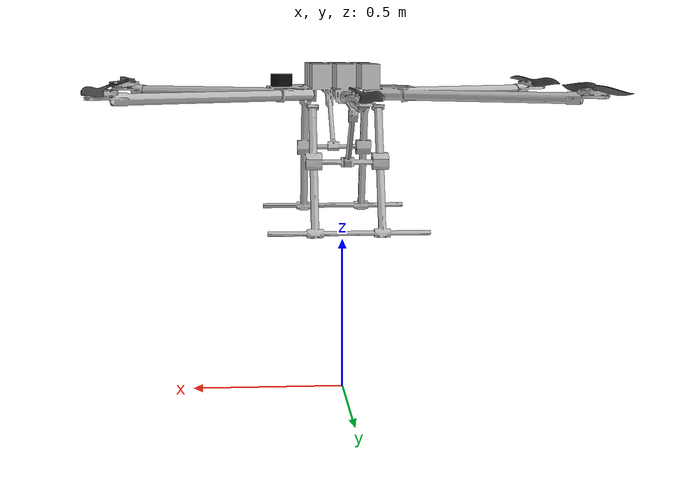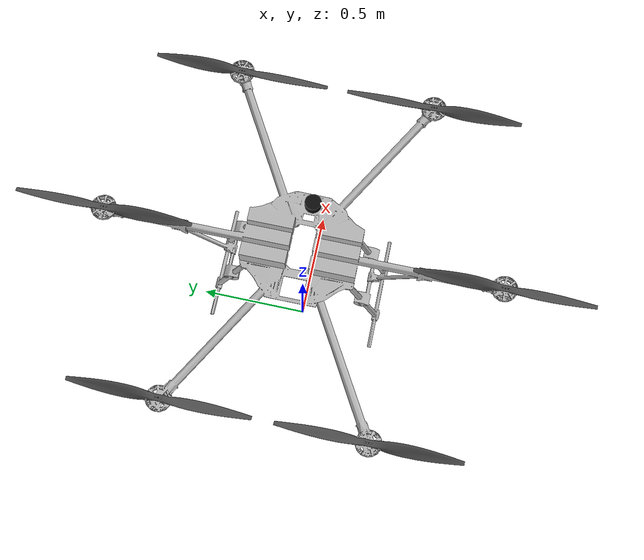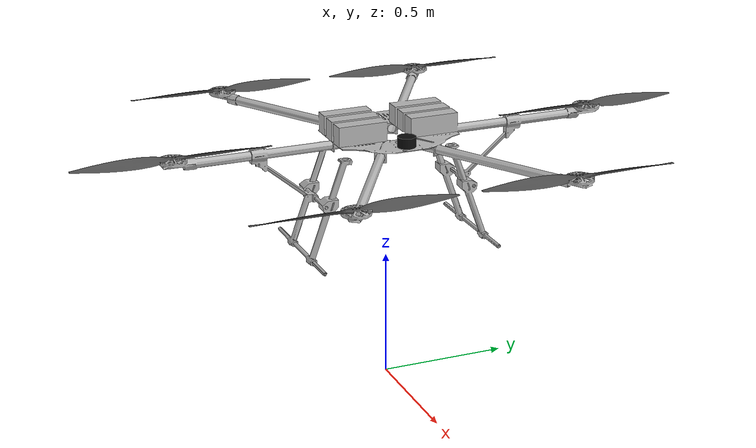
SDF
<?xml version="1.0" encoding="UTF-8"?>
<sdf version='1.9'>
  <model name='sprind'>
    <pose>0 0 1 0 0 0</pose>
    <self_collide>false</self_collide>
    <static>false</static>
    <link name="base_link">
      <inertial>
        <mass>19.74</mass>
        <pose>0 0 0.04 0 0 0</pose>
        <!-- enter the inertia values for the fuselage here, about the COM of the drone -->
        <inertia>
          <ixx>3.8</ixx>
          <ixy>0</ixy>
          <ixz>0</ixz>
          <iyy>2.67</iyy>
          <iyz>0</iyz>
          <izz>5.77</izz>
        </inertia>
      </inertial>
      <gravity>true</gravity>
      <velocity_decay/>
      <visual name="base_link_visual">
        <pose>0 0 0 0 0 0</pose>
        <geometry>
          <mesh>
            <scale>1 1 1</scale>
            <uri>model://sprind/meshes/sprind_compressed.stl</uri>
          </mesh>
        </geometry>
      </visual>
      <collision name="base_link_collision">
        <geometry>
          <mesh>
            <scale>1 1 1</scale>
            <uri>model://sprind/meshes/sprind_compressed.stl</uri>
          </mesh>
        </geometry>
        <surface>
          <contact>
            <ode>
              <kp>100000</kp>
              <kd>1.0</kd>
              <max_vel>0.1</max_vel>
              <min_depth>0.001</min_depth>
            </ode>
          </contact>
          <friction>
            <ode/>
          </friction>
        </surface>
      </collision>
      <sensor name="air_pressure_sensor" type="air_pressure">
        <always_on>1</always_on>
        <update_rate>50</update_rate>
        <air_pressure>
          <pressure>
            <noise type="gaussian">
              <mean>0</mean>
              <stddev>0.01</stddev>
            </noise>
          </pressure>
        </air_pressure>
      </sensor>
      <sensor name="imu_sensor" type="imu">
        <always_on>1</always_on>
        <update_rate>250</update_rate>
        <imu>
          <angular_velocity>
            <x>
              <noise type="gaussian">
                <mean>0</mean>
                <stddev>0.00018665</stddev>
                <dynamic_bias_stddev>3.8785e-05</dynamic_bias_stddev>
                <dynamic_bias_correlation_time>1000</dynamic_bias_correlation_time>
              </noise>
            </x>
            <y>
              <noise type="gaussian">
                <mean>0</mean>
                <stddev>0.00018665</stddev>
                <dynamic_bias_stddev>3.8785e-05</dynamic_bias_stddev>
                <dynamic_bias_correlation_time>1000</dynamic_bias_correlation_time>
              </noise>
            </y>
            <z>
              <noise type="gaussian">
                <mean>0</mean>
                <stddev>0.00018665</stddev>
                <dynamic_bias_stddev>3.8785e-05</dynamic_bias_stddev>
                <dynamic_bias_correlation_time>1000</dynamic_bias_correlation_time>
              </noise>
            </z>
          </angular_velocity>
          <linear_acceleration>
            <x>
              <noise type="gaussian">
                <mean>0</mean>
                <stddev>0.00186</stddev>
                <dynamic_bias_stddev>0.006</dynamic_bias_stddev>
                <dynamic_bias_correlation_time>300</dynamic_bias_correlation_time>
              </noise>
            </x>
            <y>
              <noise type="gaussian">
                <mean>0</mean>
                <stddev>0.00186</stddev>
                <dynamic_bias_stddev>0.006</dynamic_bias_stddev>
                <dynamic_bias_correlation_time>300</dynamic_bias_correlation_time>
              </noise>
            </y>
            <z>
              <noise type="gaussian">
                <mean>0</mean>
                <stddev>0.00186</stddev>
                <dynamic_bias_stddev>0.006</dynamic_bias_stddev>
                <dynamic_bias_correlation_time>300</dynamic_bias_correlation_time>
              </noise>
            </z>
          </linear_acceleration>
        </imu>
      </sensor>
      <sensor name="navsat_sensor" type="navsat">
        <always_on>1</always_on>
        <update_rate>30</update_rate>
      </sensor>
    </link>
    <link name="rotor_0">
      <gravity>true</gravity>
      <self_collide>false</self_collide>
      <velocity_decay/>
      <pose>0.008465 -0.84437 0.016 0 0 0</pose>
      <inertial>
          <mass>0.093</mass>
          <inertia>
            <ixx>0.0036525</ixx>
            <iyy>0.0000099</iyy>
            <izz>0.0036591</izz>
          </inertia>
      </inertial>
      <visual name="rotor_0_visual">
        <pose>0 0 0 0 0 0</pose>
        <geometry>
          <mesh>
            <scale>1 1 1</scale>
            <uri>model://sprind/meshes/cw_prop.stl</uri>
          </mesh>
        </geometry>
        <material>
          <script>
            <name>Gazebo/DarkGrey</name>
            <uri>file://media/materials/scripts/gazebo.material</uri>
          </script>
        </material>
      </visual>
      <collision name="rotor_0_collision">
        <pose>0 0 0 0 0 0</pose>
        <geometry>
          <mesh>
            <scale>1 1 1</scale>
            <uri>model://sprind/meshes/cw_prop.stl</uri>
          </mesh>
        </geometry>
        <surface>
          <contact>
            <ode>
              <kp>100000</kp>
              <kd>1.0</kd>
              <max_vel>0.1</max_vel>
              <min_depth>0.001</min_depth>
            </ode>
          </contact>
          <friction>
            <ode/>
          </friction>
        </surface>
      </collision>
    </link>
    <joint name="rotor_0_joint" type="revolute">
      <parent>base_link</parent>
      <child>rotor_0</child>
      <axis>
        <xyz>0 0 1</xyz>
        <limit>
          <lower>-1e+16</lower>
          <upper>1e+16</upper>
        </limit>
        <dynamics>
          <spring_reference>0</spring_reference>
          <spring_stiffness>0</spring_stiffness>
        </dynamics>
      </axis>
    </joint>
    <link name="rotor_1">
      <gravity>true</gravity>
      <self_collide>false</self_collide>
      <velocity_decay/>
      <pose>0.008616 0.85736 0.016 0 0 0</pose>
      <inertial>
          <mass>0.093</mass>
          <inertia>
            <ixx>0.0036525</ixx>
            <iyy>0.0000099</iyy>
            <izz>0.0036591</izz>
          </inertia>
      </inertial>
      <visual name="rotor_1_visual">
        <pose>0 0 0 0 0 0</pose>
        <geometry>
          <mesh>
            <scale>1 1 1</scale>
            <uri>model://sprind/meshes/ccw_prop.stl</uri>
          </mesh>
        </geometry>
        <material>
          <script>
            <name>Gazebo/DarkGrey</name>
            <uri>file://media/materials/scripts/gazebo.material</uri>
          </script>
        </material>
      </visual>
      <collision name="rotor_1_collision">
        <pose>0 0 0 0 0 0</pose>
        <geometry>
          <mesh>
            <scale>1 1 1</scale>
            <uri>model://sprind/meshes/ccw_prop.stl</uri>
          </mesh>
        </geometry>
        <surface>
          <contact>
            <ode>
              <kp>100000</kp>
              <kd>1.0</kd>
              <max_vel>0.1</max_vel>
              <min_depth>0.001</min_depth>
            </ode>
          </contact>
          <friction>
            <ode/>
          </friction>
        </surface>
      </collision>
    </link>
    <joint name="rotor_1_joint" type="revolute">
      <parent>base_link</parent>
      <child>rotor_1</child>
      <axis>
        <xyz>0 0 1</xyz>
        <limit>
          <lower>-1e+16</lower>
          <upper>1e+16</upper>
        </limit>
        <dynamics>
          <spring_reference>0</spring_reference>
          <spring_stiffness>0</spring_stiffness>
        </dynamics>
      </axis>
    </joint>
    <link name="rotor_2">
      <gravity>true</gravity>
      <self_collide>false</self_collide>
      <velocity_decay/>
      <pose>0.74545 0.43186 0.016 0 0 0</pose>
      <inertial>
          <mass>0.093</mass>
          <inertia>
            <ixx>0.0036525</ixx>
            <iyy>0.0000099</iyy>
            <izz>0.0036591</izz>
          </inertia>
      </inertial>
      <visual name="rotor_2_visual">
        <pose>0 0 0 0 0 0</pose>
        <geometry>
          <mesh>
            <scale>1 1 1</scale>
            <uri>model://sprind/meshes/cw_prop.stl</uri>
          </mesh>
        </geometry>
        <material>
          <script>
            <name>Gazebo/DarkGrey</name>
            <uri>file://media/materials/scripts/gazebo.material</uri>
          </script>
        </material>
      </visual>
      <collision name="rotor_2_collision">
        <pose>0 0 0 0 0 0</pose>
        <geometry>
          <mesh>
            <scale>1 1 1</scale>
            <uri>model://sprind/meshes/cw_prop.stl</uri>
          </mesh>
        </geometry>
        <surface>
          <contact>
            <ode>
              <kp>100000</kp>
              <kd>1.0</kd>
              <max_vel>0.1</max_vel>
              <min_depth>0.001</min_depth>
            </ode>
          </contact>
          <friction>
            <ode/>
          </friction>
        </surface>
      </collision>
    </link>
    <joint name="rotor_2_joint" type="revolute">
      <parent>base_link</parent>
      <child>rotor_2</child>
      <axis>
        <xyz>0 0 1</xyz>
        <limit>
          <lower>-1e+16</lower>
          <upper>1e+16</upper>
        </limit>
        <dynamics>
          <spring_reference>0</spring_reference>
          <spring_stiffness>0</spring_stiffness>
        </dynamics>
      </axis>
    </joint>
    <link name="rotor_3">
      <gravity>true</gravity>
      <self_collide>false</self_collide>
      <velocity_decay/>
      <pose>-0.72837 -0.41887 0.016 0 0 0</pose>
      <inertial>
          <mass>0.093</mass>
          <inertia>
            <ixx>0.0036525</ixx>
            <iyy>0.0000099</iyy>
            <izz>0.0036591</izz>
          </inertia>
      </inertial>
      <visual name="rotor_3_visual">
        <pose>0 0 0 0 0 0</pose>
        <geometry>
          <mesh>
            <scale>1 1 1</scale>
            <uri>model://sprind/meshes/ccw_prop.stl</uri>
          </mesh>
        </geometry>
        <material>
          <script>
            <name>Gazebo/DarkGrey</name>
            <uri>file://media/materials/scripts/gazebo.material</uri>
          </script>
        </material>
      </visual>
      <collision name="rotor_3_collision">
        <pose>0 0 0 0 0 0</pose>
        <geometry>
          <mesh>
            <scale>1 1 1</scale>
            <uri>model://sprind/meshes/ccw_prop.stl</uri>
          </mesh>
        </geometry>
        <surface>
          <contact>
            <ode>
              <kp>100000</kp>
              <kd>1.0</kd>
              <max_vel>0.1</max_vel>
              <min_depth>0.001</min_depth>
            </ode>
          </contact>
          <friction>
            <ode/>
          </friction>
        </surface>
      </collision>
    </link>
    <joint name="rotor_3_joint" type="revolute">
      <parent>base_link</parent>
      <child>rotor_3</child>
      <axis>
        <xyz>0 0 1</xyz>
        <limit>
          <lower>-1e+16</lower>
          <upper>1e+16</upper>
        </limit>
        <dynamics>
          <spring_reference>0</spring_reference>
          <spring_stiffness>0</spring_stiffness>
        </dynamics>
      </axis>
    </joint>
    <link name="rotor_4">
      <gravity>true</gravity>
      <self_collide>false</self_collide>
      <velocity_decay/>
      <pose>0.745715 -0.419 0.016 0 0 0</pose>
      <inertial>
          <mass>0.093</mass>
          <inertia>
            <ixx>0.0036525</ixx>
            <iyy>0.0000099</iyy>
            <izz>0.0036591</izz>
          </inertia>
      </inertial>
      <visual name="rotor_4_visual">
        <pose>0 0 0 0 0 0</pose>
        <geometry>
          <mesh>
            <scale>1 1 1</scale>
            <uri>model://sprind/meshes/ccw_prop.stl</uri>
          </mesh>
        </geometry>
        <material>
          <script>
            <name>Gazebo/DarkGrey</name>
            <uri>file://media/materials/scripts/gazebo.material</uri>
          </script>
        </material>
      </visual>
      <collision name="rotor_4_collision">
        <pose>0 0 0 0 0 0</pose>
        <geometry>
          <mesh>
            <scale>1 1 1</scale>
            <uri>model://sprind/meshes/ccw_prop.stl</uri>
          </mesh>
        </geometry>
        <surface>
          <contact>
            <ode>
              <kp>100000</kp>
              <kd>1.0</kd>
              <max_vel>0.1</max_vel>
              <min_depth>0.001</min_depth>
            </ode>
          </contact>
          <friction>
            <ode/>
          </friction>
        </surface>
      </collision>
    </link>
    <joint name="rotor_4_joint" type="revolute">
      <parent>base_link</parent>
      <child>rotor_4</child>
      <axis>
        <xyz>0 0 1</xyz>
        <limit>
          <lower>-1e+16</lower>
          <upper>1e+16</upper>
        </limit>
        <dynamics>
          <spring_reference>0</spring_reference>
          <spring_stiffness>0</spring_stiffness>
        </dynamics>
      </axis>
    </joint>
    <link name="rotor_5">
      <gravity>true</gravity>
      <self_collide>false</self_collide>
      <velocity_decay/>
      <pose>-0.7279 0.43261 0.016 0 0 0</pose>
      <inertial>
          <mass>0.093</mass>
          <inertia>
            <ixx>0.0036525</ixx>
            <iyy>0.0000099</iyy>
            <izz>0.0036591</izz>
          </inertia>
      </inertial>
      <visual name="rotor_5_visual">
        <pose>0 0 0 0 0 0</pose>
        <geometry>
          <mesh>
            <scale>1 1 1</scale>
            <uri>model://sprind/meshes/cw_prop.stl</uri>
          </mesh>
        </geometry>
        <material>
          <script>
            <name>Gazebo/DarkGrey</name>
            <uri>file://media/materials/scripts/gazebo.material</uri>
          </script>
        </material>
      </visual>
      <collision name="rotor_5_collision">
        <pose>0 0 0 0 0 0</pose>
        <geometry>
          <mesh>
            <scale>1 1 1</scale>
            <uri>model://sprind/meshes/cw_prop.stl</uri>
          </mesh>
        </geometry>
        <surface>
          <contact>
            <ode>
              <kp>100000</kp>
              <kd>1.0</kd>
              <max_vel>0.1</max_vel>
              <min_depth>0.001</min_depth>
            </ode>
          </contact>
          <friction>
            <ode/>
          </friction>
        </surface>
      </collision>
    </link>
    <joint name="rotor_5_joint" type="revolute">
      <parent>base_link</parent>
      <child>rotor_5</child>
      <axis>
        <xyz>0 0 1</xyz>
        <limit>
          <lower>-1e+16</lower>
          <upper>1e+16</upper>
        </limit>
        <dynamics>
          <spring_reference>0</spring_reference>
          <spring_stiffness>0</spring_stiffness>
        </dynamics>
      </axis>
    </joint>
    <plugin filename="gz-sim-multicopter-motor-model-system" name="gz::sim::systems::MulticopterMotorModel">
      <jointName>rotor_0_joint</jointName>
      <linkName>rotor_0</linkName>
      <turningDirection>cw</turningDirection>
      <timeConstantUp>0.0125</timeConstantUp>
      <timeConstantDown>0.025</timeConstantDown>
      <maxRotVelocity>3116</maxRotVelocity>
      <motorConstant>2.99e-04</motorConstant>
      <momentConstant>0.1061</momentConstant>
      <commandSubTopic>command/motor_speed</commandSubTopic>
      <motorNumber>0</motorNumber>
      <rotorDragCoefficient>0.0255</rotorDragCoefficient>
      <rollingMomentCoefficient>1e-06</rollingMomentCoefficient>
      <rotorVelocitySlowdownSim>10</rotorVelocitySlowdownSim>
      <motorType>velocity</motorType>
    </plugin>
    <plugin filename="gz-sim-multicopter-motor-model-system" name="gz::sim::systems::MulticopterMotorModel">
      <jointName>rotor_1_joint</jointName>
      <linkName>rotor_1</linkName>
      <turningDirection>ccw</turningDirection>
      <timeConstantUp>0.0125</timeConstantUp>
      <timeConstantDown>0.025</timeConstantDown>
      <maxRotVelocity>3116</maxRotVelocity>
      <motorConstant>2.99e-04</motorConstant>
      <momentConstant>0.1061</momentConstant>
      <commandSubTopic>command/motor_speed</commandSubTopic>
      <motorNumber>1</motorNumber>
      <rotorDragCoefficient>0.0255</rotorDragCoefficient>
      <rollingMomentCoefficient>1e-06</rollingMomentCoefficient>
      <rotorVelocitySlowdownSim>10</rotorVelocitySlowdownSim>
      <motorType>velocity</motorType>
    </plugin>
    <plugin filename="gz-sim-multicopter-motor-model-system" name="gz::sim::systems::MulticopterMotorModel">
      <jointName>rotor_2_joint</jointName>
      <linkName>rotor_2</linkName>
      <turningDirection>cw</turningDirection>
      <timeConstantUp>0.0125</timeConstantUp>
      <timeConstantDown>0.025</timeConstantDown>
      <maxRotVelocity>3116</maxRotVelocity>
      <motorConstant>2.99e-04</motorConstant>
      <momentConstant>0.1061</momentConstant>
      <commandSubTopic>command/motor_speed</commandSubTopic>
      <motorNumber>2</motorNumber>
      <rotorDragCoefficient>0.0255</rotorDragCoefficient>
      <rollingMomentCoefficient>1e-06</rollingMomentCoefficient>
      <rotorVelocitySlowdownSim>10</rotorVelocitySlowdownSim>
      <motorType>velocity</motorType>
    </plugin>
    <plugin filename="gz-sim-multicopter-motor-model-system" name="gz::sim::systems::MulticopterMotorModel">
      <jointName>rotor_3_joint</jointName>
      <linkName>rotor_3</linkName>
      <turningDirection>ccw</turningDirection>
      <timeConstantUp>0.0125</timeConstantUp>
      <timeConstantDown>0.025</timeConstantDown>
      <maxRotVelocity>3116</maxRotVelocity>
      <motorConstant>2.99e-04</motorConstant>
      <momentConstant>0.1061</momentConstant>
      <commandSubTopic>command/motor_speed</commandSubTopic>
      <motorNumber>3</motorNumber>
      <rotorDragCoefficient>0.0255</rotorDragCoefficient>
      <rollingMomentCoefficient>1e-06</rollingMomentCoefficient>
      <rotorVelocitySlowdownSim>10</rotorVelocitySlowdownSim>
      <motorType>velocity</motorType>
    </plugin>
    <plugin filename="gz-sim-multicopter-motor-model-system" name="gz::sim::systems::MulticopterMotorModel">
      <jointName>rotor_4_joint</jointName>
      <linkName>rotor_4</linkName>
      <turningDirection>ccw</turningDirection>
      <timeConstantUp>0.0125</timeConstantUp>
      <timeConstantDown>0.025</timeConstantDown>
      <maxRotVelocity>3116</maxRotVelocity>
      <motorConstant>2.99e-04</motorConstant>
      <momentConstant>0.1061</momentConstant>
      <commandSubTopic>command/motor_speed</commandSubTopic>
      <motorNumber>4</motorNumber>
      <rotorDragCoefficient>0.0255</rotorDragCoefficient>
      <rollingMomentCoefficient>1e-06</rollingMomentCoefficient>
      <rotorVelocitySlowdownSim>10</rotorVelocitySlowdownSim>
      <motorType>velocity</motorType>
    </plugin>
    <plugin filename="gz-sim-multicopter-motor-model-system" name="gz::sim::systems::MulticopterMotorModel">
      <jointName>rotor_5_joint</jointName>
      <linkName>rotor_5</linkName>
      <turningDirection>cw</turningDirection>
      <timeConstantUp>0.0125</timeConstantUp>
      <timeConstantDown>0.025</timeConstantDown>
      <maxRotVelocity>3116</maxRotVelocity>
      <motorConstant>2.99e-04</motorConstant>
      <momentConstant>0.1061</momentConstant>
      <commandSubTopic>command/motor_speed</commandSubTopic>
      <motorNumber>5</motorNumber>
      <rotorDragCoefficient>0.0255</rotorDragCoefficient>
      <rollingMomentCoefficient>1e-06</rollingMomentCoefficient>
      <rotorVelocitySlowdownSim>10</rotorVelocitySlowdownSim>
      <motorType>velocity</motorType>
    </plugin>
    <plugin
      filename="gz-sim-odometry-publisher-system"
      name="gz::sim::systems::OdometryPublisher">
      <odom_frame>map</odom_frame>
      <robot_base_frame>base_link</robot_base_frame>
      <odom_topic>ground_truth/odom</odom_topic>
      <dimensions>3</dimensions>
    </plugin>
    <include merge='true'>
      <uri>model://livox_mid360</uri>
      <pose>.2 0 .03 3.141592654 0 0</pose>
    </include>
    <joint name="LidarJoint" type="fixed">
      <parent>base_link</parent>
      <child>link</child>
      <pose relative_to="base_link">0 0 0 0 0 0</pose>
    </joint>
    <plugin filename="gz-sim-mavlink-system" name="gz::sim::systems::Mavlink">
      <imu_sub_topic>/imu</imu_sub_topic>
      <mag_sub_topic>/mag</mag_sub_topic>
      <baro_sub_topic>/baro</baro_sub_topic>
      <serial_enabled>false</serial_enabled>
      <qgc_addr>INADDR_ANY</qgc_addr>
      <qgc_udp_port>14550</qgc_udp_port>
      <hil_mode>false</hil_mode>
      <hil_state_level>false</hil_state_level>
      <use_tcp>true</use_tcp>

      <motorSpeedCommandPubTopic>/command/motor_speed</motorSpeedCommandPubTopic>
      <control_channels>
        <channel name="rotor1">
          <input_index>0</input_index>
          <input_offset>0</input_offset>
          <input_scaling>3116</input_scaling>
          <zero_position_disarmed>0</zero_position_disarmed>
          <zero_position_armed>100</zero_position_armed>
          <joint_control_type>velocity</joint_control_type>
        </channel>
        <channel name="rotor2">
          <input_index>1</input_index>
          <input_offset>0</input_offset>
          <input_scaling>3116</input_scaling>
          <zero_position_disarmed>0</zero_position_disarmed>
          <zero_position_armed>100</zero_position_armed>
          <joint_control_type>velocity</joint_control_type>
        </channel>
        <channel name="rotor3">
          <input_index>2</input_index>
          <input_offset>0</input_offset>
          <input_scaling>3116</input_scaling>
          <zero_position_disarmed>0</zero_position_disarmed>
          <zero_position_armed>100</zero_position_armed>
          <joint_control_type>velocity</joint_control_type>
        </channel>
        <channel name="rotor4">
          <input_index>3</input_index>
          <input_offset>0</input_offset>
          <input_scaling>3116</input_scaling>
          <zero_position_disarmed>0</zero_position_disarmed>
          <zero_position_armed>100</zero_position_armed>
          <joint_control_type>velocity</joint_control_type>
        </channel>
        <channel name="rotor5">
          <input_index>4</input_index>
          <input_offset>0</input_offset>
          <input_scaling>3116</input_scaling>
          <zero_position_disarmed>0</zero_position_disarmed>
          <zero_position_armed>100</zero_position_armed>
          <joint_control_type>velocity</joint_control_type>
        </channel>
        <channel name="rotor6">
          <input_index>5</input_index>
          <input_offset>0</input_offset>
          <input_scaling>3116</input_scaling>
          <zero_position_disarmed>0</zero_position_disarmed>
          <zero_position_armed>100</zero_position_armed>
          <joint_control_type>velocity</joint_control_type>
        </channel>
      </control_channels>
    </plugin>
    </model>
</sdf>

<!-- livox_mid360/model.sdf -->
<sdf version="1.6">
  <model name="livox_mid360">
    <static>false</static>
    <link name="link">
      <pose>0 0 0 0 0 0</pose>
      <inertial>
        <mass>0.15</mass>
        <inertia>
          <ixx>0.0001</ixx>
          <iyy>0.0001</iyy>
          <izz>0.0001</izz>
          <ixy>0</ixy>
          <ixz>0</ixz>
          <iyz>0</iyz>
        </inertia>
      </inertial>
      <visual name="visual">
        <geometry>
          <cylinder>
            <radius>0.035</radius>
            <length>0.04</length>
          </cylinder>
        </geometry>
        <material>
          <ambient>0.02 0.02 0.02 1</ambient>
          <diffuse>0.05 0.05 0.05 1</diffuse>
        </material>
      </visual>
      <collision name="collision">
        <geometry>
          <cylinder>
            <radius>0.035</radius>
            <length>0.04</length>
          </cylinder>
        </geometry>
      </collision>
      <sensor name="livox_mid360_sensor" type="ray">
        <pose>0 0 0 0 0 0</pose>
        <visualize>false</visualize>
        <update_rate>10</update_rate>
        <ray>
          <scan>
            <horizontal>
              <samples>720</samples>
              <resolution>1</resolution>
              <min_angle>-3.14159</min_angle>
              <max_angle>3.14159</max_angle>
            </horizontal>
            <vertical>
              <samples>32</samples>
              <resolution>1</resolution>
              <min_angle>-0.916</min_angle>
              <max_angle>0.916</max_angle>
            </vertical>
          </scan>
          <range>
            <min>0.2</min>
            <max>40.0</max>
            <resolution>0.03</resolution>
          </range>
          <noise>
            <type>gaussian</type>
            <mean>0.0</mean>
            <stddev>0.01</stddev>
          </noise>
        </ray>
        <plugin name="gazebo_ros_lidar_controller" filename="libgazebo_ros_lidar.so">
          <topicName>/livox/lidar</topicName>
          <frameName>livox_mid360</frameName>
          <organize_cloud>false</organize_cloud>
          <min_range>0.2</min_range>
          <max_range>40.0</max_range>
          <gaussianNoise>0.01</gaussianNoise>
        </plugin>
      </sensor>
    </link>
  </model>
</sdf>
